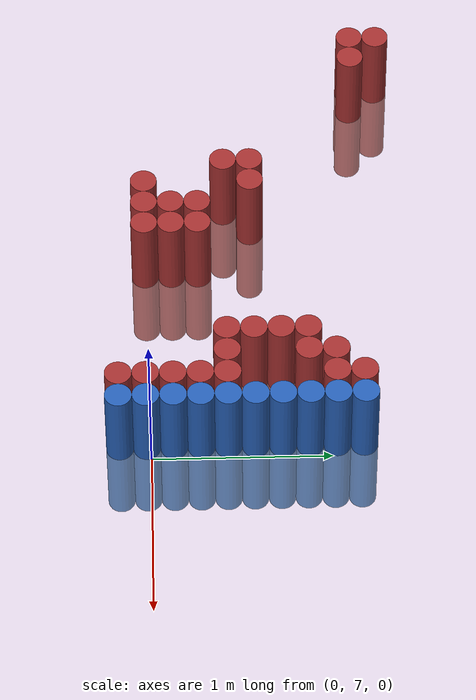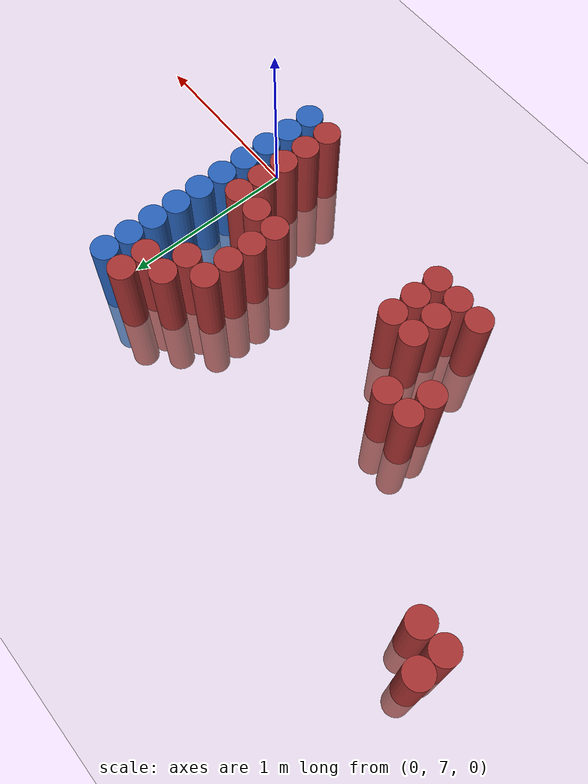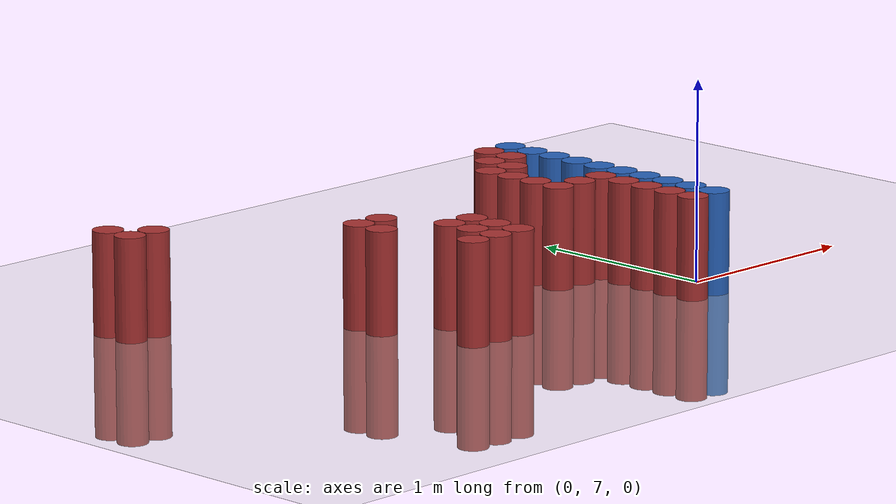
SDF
<sdf version="1.6">
 <world name="default">
  <model name="ground_plane">
   <static>1</static>
   <link name="link">
    <collision name="collision">
     <geometry><plane><normal>0 0 1</normal><size>100 100</size></plane></geometry>
     <surface><friction><ode><mu>100</mu><mu2>50</mu2></ode></friction></surface>
    </collision>
    <visual name="visual">
     <cast_shadows>0</cast_shadows>
     <geometry><plane><normal>0 0 1</normal><size>100 100</size></plane></geometry>
     <material>
      <script><uri>file://media/materials/scripts/gazebo.material</uri><name>Gazebo/Grey</name></script>
     </material>
    </visual>
   </link>
  </model>
  <model name="unit_cylinder_196">
   <static>1</static>
   <pose>-2.625000 8.175000 0.000000 0.000000 0.000000 0.000000</pose>
   <link name="link">
    <inertial>
     <mass>1</mass>
     <inertia><ixx>0.145833</ixx><ixy>0</ixy><ixz>0</ixz><iyy>0.145833</iyy><iyz>0</iyz><izz>0.125</izz></inertia>
    </inertial>
    <collision name="collision">
     <geometry><cylinder><radius>0.075000</radius><length>1</length></cylinder></geometry>
    </collision>
    <visual name="visual">
     <geometry><cylinder><radius>0.075000</radius><length>1</length></cylinder></geometry>
     <material>
      <ambient>0.648000 0.192000 0.192000 1</ambient>
      <diffuse>0.648000 0.192000 0.192000 1</diffuse>
     </material>
     <material>
      <script><name>Gazebo/Grey</name><uri>file://media/materials/scripts/gazebo.material</uri></script>
     </material>
    </visual>
    <sensor name="sensor_contact" type="contact"><contact><collision>collision</collision></contact></sensor>
   </link>
   <plugin filename="gz-sim-touchplugin-system" name="gz::sim::systems::TouchPlugin">
    <target>robot</target>
    <namespace>robot</namespace>
    <time>0.001</time>
    <enabled>true</enabled>
   </plugin>
  </model>
  <model name="unit_cylinder_197">
   <static>1</static>
   <pose>-2.625000 8.325000 0.000000 0.000000 0.000000 0.000000</pose>
   <link name="link">
    <inertial>
     <mass>1</mass>
     <inertia><ixx>0.145833</ixx><ixy>0</ixy><ixz>0</ixz><iyy>0.145833</iyy><iyz>0</iyz><izz>0.125</izz></inertia>
    </inertial>
    <collision name="collision">
     <geometry><cylinder><radius>0.075000</radius><length>1</length></cylinder></geometry>
    </collision>
    <visual name="visual">
     <geometry><cylinder><radius>0.075000</radius><length>1</length></cylinder></geometry>
     <material>
      <ambient>0.648000 0.192000 0.192000 1</ambient>
      <diffuse>0.648000 0.192000 0.192000 1</diffuse>
     </material>
     <material>
      <script><name>Gazebo/Grey</name><uri>file://media/materials/scripts/gazebo.material</uri></script>
     </material>
    </visual>
    <sensor name="sensor_contact" type="contact"><contact><collision>collision</collision></contact></sensor>
   </link>
   <plugin filename="gz-sim-touchplugin-system" name="gz::sim::systems::TouchPlugin">
    <target>robot</target>
    <namespace>robot</namespace>
    <time>0.001</time>
    <enabled>true</enabled>
   </plugin>
  </model>
  <model name="unit_cylinder_199">
   <static>1</static>
   <pose>-2.475000 8.175000 0.000000 0.000000 0.000000 0.000000</pose>
   <link name="link">
    <inertial>
     <mass>1</mass>
     <inertia><ixx>0.145833</ixx><ixy>0</ixy><ixz>0</ixz><iyy>0.145833</iyy><iyz>0</iyz><izz>0.125</izz></inertia>
    </inertial>
    <collision name="collision">
     <geometry><cylinder><radius>0.075000</radius><length>1</length></cylinder></geometry>
    </collision>
    <visual name="visual">
     <geometry><cylinder><radius>0.075000</radius><length>1</length></cylinder></geometry>
     <material>
      <ambient>0.648000 0.192000 0.192000 1</ambient>
      <diffuse>0.648000 0.192000 0.192000 1</diffuse>
     </material>
     <material>
      <script><name>Gazebo/Grey</name><uri>file://media/materials/scripts/gazebo.material</uri></script>
     </material>
    </visual>
    <sensor name="sensor_contact" type="contact"><contact><collision>collision</collision></contact></sensor>
   </link>
   <plugin filename="gz-sim-touchplugin-system" name="gz::sim::systems::TouchPlugin">
    <target>robot</target>
    <namespace>robot</namespace>
    <time>0.001</time>
    <enabled>true</enabled>
   </plugin>
  </model>
  <model name="unit_cylinder_215">
   <static>1</static>
   <pose>-1.725000 7.425000 0.000000 0.000000 0.000000 0.000000</pose>
   <link name="link">
    <inertial>
     <mass>1</mass>
     <inertia><ixx>0.145833</ixx><ixy>0</ixy><ixz>0</ixz><iyy>0.145833</iyy><iyz>0</iyz><izz>0.125</izz></inertia>
    </inertial>
    <collision name="collision">
     <geometry><cylinder><radius>0.075000</radius><length>1</length></cylinder></geometry>
    </collision>
    <visual name="visual">
     <geometry><cylinder><radius>0.075000</radius><length>1</length></cylinder></geometry>
     <material>
      <ambient>0.648000 0.192000 0.192000 1</ambient>
      <diffuse>0.648000 0.192000 0.192000 1</diffuse>
     </material>
     <material>
      <script><name>Gazebo/Grey</name><uri>file://media/materials/scripts/gazebo.material</uri></script>
     </material>
    </visual>
    <sensor name="sensor_contact" type="contact"><contact><collision>collision</collision></contact></sensor>
   </link>
   <plugin filename="gz-sim-touchplugin-system" name="gz::sim::systems::TouchPlugin">
    <target>robot</target>
    <namespace>robot</namespace>
    <time>0.001</time>
    <enabled>true</enabled>
   </plugin>
  </model>
  <model name="unit_cylinder_216">
   <static>1</static>
   <pose>-1.725000 7.575000 0.000000 0.000000 0.000000 0.000000</pose>
   <link name="link">
    <inertial>
     <mass>1</mass>
     <inertia><ixx>0.145833</ixx><ixy>0</ixy><ixz>0</ixz><iyy>0.145833</iyy><iyz>0</iyz><izz>0.125</izz></inertia>
    </inertial>
    <collision name="collision">
     <geometry><cylinder><radius>0.075000</radius><length>1</length></cylinder></geometry>
    </collision>
    <visual name="visual">
     <geometry><cylinder><radius>0.075000</radius><length>1</length></cylinder></geometry>
     <material>
      <ambient>0.648000 0.192000 0.192000 1</ambient>
      <diffuse>0.648000 0.192000 0.192000 1</diffuse>
     </material>
     <material>
      <script><name>Gazebo/Grey</name><uri>file://media/materials/scripts/gazebo.material</uri></script>
     </material>
    </visual>
    <sensor name="sensor_contact" type="contact"><contact><collision>collision</collision></contact></sensor>
   </link>
   <plugin filename="gz-sim-touchplugin-system" name="gz::sim::systems::TouchPlugin">
    <target>robot</target>
    <namespace>robot</namespace>
    <time>0.001</time>
    <enabled>true</enabled>
   </plugin>
  </model>
  <model name="unit_cylinder_223">
   <static>1</static>
   <pose>-1.575000 6.975000 0.000000 0.000000 0.000000 0.000000</pose>
   <link name="link">
    <inertial>
     <mass>1</mass>
     <inertia><ixx>0.145833</ixx><ixy>0</ixy><ixz>0</ixz><iyy>0.145833</iyy><iyz>0</iyz><izz>0.125</izz></inertia>
    </inertial>
    <collision name="collision">
     <geometry><cylinder><radius>0.075000</radius><length>1</length></cylinder></geometry>
    </collision>
    <visual name="visual">
     <geometry><cylinder><radius>0.075000</radius><length>1</length></cylinder></geometry>
     <material>
      <ambient>0.648000 0.192000 0.192000 1</ambient>
      <diffuse>0.648000 0.192000 0.192000 1</diffuse>
     </material>
     <material>
      <script><name>Gazebo/Grey</name><uri>file://media/materials/scripts/gazebo.material</uri></script>
     </material>
    </visual>
    <sensor name="sensor_contact" type="contact"><contact><collision>collision</collision></contact></sensor>
   </link>
   <plugin filename="gz-sim-touchplugin-system" name="gz::sim::systems::TouchPlugin">
    <target>robot</target>
    <namespace>robot</namespace>
    <time>0.001</time>
    <enabled>true</enabled>
   </plugin>
  </model>
  <model name="unit_cylinder_224">
   <static>1</static>
   <pose>-1.575000 7.575000 0.000000 0.000000 0.000000 0.000000</pose>
   <link name="link">
    <inertial>
     <mass>1</mass>
     <inertia><ixx>0.145833</ixx><ixy>0</ixy><ixz>0</ixz><iyy>0.145833</iyy><iyz>0</iyz><izz>0.125</izz></inertia>
    </inertial>
    <collision name="collision">
     <geometry><cylinder><radius>0.075000</radius><length>1</length></cylinder></geometry>
    </collision>
    <visual name="visual">
     <geometry><cylinder><radius>0.075000</radius><length>1</length></cylinder></geometry>
     <material>
      <ambient>0.648000 0.192000 0.192000 1</ambient>
      <diffuse>0.648000 0.192000 0.192000 1</diffuse>
     </material>
     <material>
      <script><name>Gazebo/Grey</name><uri>file://media/materials/scripts/gazebo.material</uri></script>
     </material>
    </visual>
    <sensor name="sensor_contact" type="contact"><contact><collision>collision</collision></contact></sensor>
   </link>
   <plugin filename="gz-sim-touchplugin-system" name="gz::sim::systems::TouchPlugin">
    <target>robot</target>
    <namespace>robot</namespace>
    <time>0.001</time>
    <enabled>true</enabled>
   </plugin>
  </model>
  <model name="unit_cylinder_231">
   <static>1</static>
   <pose>-1.425000 6.975000 0.000000 0.000000 0.000000 0.000000</pose>
   <link name="link">
    <inertial>
     <mass>1</mass>
     <inertia><ixx>0.145833</ixx><ixy>0</ixy><ixz>0</ixz><iyy>0.145833</iyy><iyz>0</iyz><izz>0.125</izz></inertia>
    </inertial>
    <collision name="collision">
     <geometry><cylinder><radius>0.075000</radius><length>1</length></cylinder></geometry>
    </collision>
    <visual name="visual">
     <geometry><cylinder><radius>0.075000</radius><length>1</length></cylinder></geometry>
     <material>
      <ambient>0.648000 0.192000 0.192000 1</ambient>
      <diffuse>0.648000 0.192000 0.192000 1</diffuse>
     </material>
     <material>
      <script><name>Gazebo/Grey</name><uri>file://media/materials/scripts/gazebo.material</uri></script>
     </material>
    </visual>
    <sensor name="sensor_contact" type="contact"><contact><collision>collision</collision></contact></sensor>
   </link>
   <plugin filename="gz-sim-touchplugin-system" name="gz::sim::systems::TouchPlugin">
    <target>robot</target>
    <namespace>robot</namespace>
    <time>0.001</time>
    <enabled>true</enabled>
   </plugin>
  </model>
  <model name="unit_cylinder_232">
   <static>1</static>
   <pose>-1.425000 7.125000 0.000000 0.000000 0.000000 0.000000</pose>
   <link name="link">
    <inertial>
     <mass>1</mass>
     <inertia><ixx>0.145833</ixx><ixy>0</ixy><ixz>0</ixz><iyy>0.145833</iyy><iyz>0</iyz><izz>0.125</izz></inertia>
    </inertial>
    <collision name="collision">
     <geometry><cylinder><radius>0.075000</radius><length>1</length></cylinder></geometry>
    </collision>
    <visual name="visual">
     <geometry><cylinder><radius>0.075000</radius><length>1</length></cylinder></geometry>
     <material>
      <ambient>0.648000 0.192000 0.192000 1</ambient>
      <diffuse>0.648000 0.192000 0.192000 1</diffuse>
     </material>
     <material>
      <script><name>Gazebo/Grey</name><uri>file://media/materials/scripts/gazebo.material</uri></script>
     </material>
    </visual>
    <sensor name="sensor_contact" type="contact"><contact><collision>collision</collision></contact></sensor>
   </link>
   <plugin filename="gz-sim-touchplugin-system" name="gz::sim::systems::TouchPlugin">
    <target>robot</target>
    <namespace>robot</namespace>
    <time>0.001</time>
    <enabled>true</enabled>
   </plugin>
  </model>
  <model name="unit_cylinder_233">
   <static>1</static>
   <pose>-1.425000 7.275000 0.000000 0.000000 0.000000 0.000000</pose>
   <link name="link">
    <inertial>
     <mass>1</mass>
     <inertia><ixx>0.145833</ixx><ixy>0</ixy><ixz>0</ixz><iyy>0.145833</iyy><iyz>0</iyz><izz>0.125</izz></inertia>
    </inertial>
    <collision name="collision">
     <geometry><cylinder><radius>0.075000</radius><length>1</length></cylinder></geometry>
    </collision>
    <visual name="visual">
     <geometry><cylinder><radius>0.075000</radius><length>1</length></cylinder></geometry>
     <material>
      <ambient>0.648000 0.192000 0.192000 1</ambient>
      <diffuse>0.648000 0.192000 0.192000 1</diffuse>
     </material>
     <material>
      <script><name>Gazebo/Grey</name><uri>file://media/materials/scripts/gazebo.material</uri></script>
     </material>
    </visual>
    <sensor name="sensor_contact" type="contact"><contact><collision>collision</collision></contact></sensor>
   </link>
   <plugin filename="gz-sim-touchplugin-system" name="gz::sim::systems::TouchPlugin">
    <target>robot</target>
    <namespace>robot</namespace>
    <time>0.001</time>
    <enabled>true</enabled>
   </plugin>
  </model>
  <model name="unit_cylinder_239">
   <static>1</static>
   <pose>-1.275000 6.975000 0.000000 0.000000 0.000000 0.000000</pose>
   <link name="link">
    <inertial>
     <mass>1</mass>
     <inertia><ixx>0.145833</ixx><ixy>0</ixy><ixz>0</ixz><iyy>0.145833</iyy><iyz>0</iyz><izz>0.125</izz></inertia>
    </inertial>
    <collision name="collision">
     <geometry><cylinder><radius>0.075000</radius><length>1</length></cylinder></geometry>
    </collision>
    <visual name="visual">
     <geometry><cylinder><radius>0.075000</radius><length>1</length></cylinder></geometry>
     <material>
      <ambient>0.648000 0.192000 0.192000 1</ambient>
      <diffuse>0.648000 0.192000 0.192000 1</diffuse>
     </material>
     <material>
      <script><name>Gazebo/Grey</name><uri>file://media/materials/scripts/gazebo.material</uri></script>
     </material>
    </visual>
    <sensor name="sensor_contact" type="contact"><contact><collision>collision</collision></contact></sensor>
   </link>
   <plugin filename="gz-sim-touchplugin-system" name="gz::sim::systems::TouchPlugin">
    <target>robot</target>
    <namespace>robot</namespace>
    <time>0.001</time>
    <enabled>true</enabled>
   </plugin>
  </model>
  <model name="unit_cylinder_240">
   <static>1</static>
   <pose>-1.275000 7.125000 0.000000 0.000000 0.000000 0.000000</pose>
   <link name="link">
    <inertial>
     <mass>1</mass>
     <inertia><ixx>0.145833</ixx><ixy>0</ixy><ixz>0</ixz><iyy>0.145833</iyy><iyz>0</iyz><izz>0.125</izz></inertia>
    </inertial>
    <collision name="collision">
     <geometry><cylinder><radius>0.075000</radius><length>1</length></cylinder></geometry>
    </collision>
    <visual name="visual">
     <geometry><cylinder><radius>0.075000</radius><length>1</length></cylinder></geometry>
     <material>
      <ambient>0.648000 0.192000 0.192000 1</ambient>
      <diffuse>0.648000 0.192000 0.192000 1</diffuse>
     </material>
     <material>
      <script><name>Gazebo/Grey</name><uri>file://media/materials/scripts/gazebo.material</uri></script>
     </material>
    </visual>
    <sensor name="sensor_contact" type="contact"><contact><collision>collision</collision></contact></sensor>
   </link>
   <plugin filename="gz-sim-touchplugin-system" name="gz::sim::systems::TouchPlugin">
    <target>robot</target>
    <namespace>robot</namespace>
    <time>0.001</time>
    <enabled>true</enabled>
   </plugin>
  </model>
  <model name="unit_cylinder_241">
   <static>1</static>
   <pose>-1.275000 7.275000 0.000000 0.000000 0.000000 0.000000</pose>
   <link name="link">
    <inertial>
     <mass>1</mass>
     <inertia><ixx>0.145833</ixx><ixy>0</ixy><ixz>0</ixz><iyy>0.145833</iyy><iyz>0</iyz><izz>0.125</izz></inertia>
    </inertial>
    <collision name="collision">
     <geometry><cylinder><radius>0.075000</radius><length>1</length></cylinder></geometry>
    </collision>
    <visual name="visual">
     <geometry><cylinder><radius>0.075000</radius><length>1</length></cylinder></geometry>
     <material>
      <ambient>0.648000 0.192000 0.192000 1</ambient>
      <diffuse>0.648000 0.192000 0.192000 1</diffuse>
     </material>
     <material>
      <script><name>Gazebo/Grey</name><uri>file://media/materials/scripts/gazebo.material</uri></script>
     </material>
    </visual>
    <sensor name="sensor_contact" type="contact"><contact><collision>collision</collision></contact></sensor>
   </link>
   <plugin filename="gz-sim-touchplugin-system" name="gz::sim::systems::TouchPlugin">
    <target>robot</target>
    <namespace>robot</namespace>
    <time>0.001</time>
    <enabled>true</enabled>
   </plugin>
  </model>
  <model name="unit_cylinder_272">
   <static>1</static>
   <pose>-0.525000 7.425000 0.000000 0.000000 0.000000 0.000000</pose>
   <link name="link">
    <inertial>
     <mass>1</mass>
     <inertia><ixx>0.145833</ixx><ixy>0</ixy><ixz>0</ixz><iyy>0.145833</iyy><iyz>0</iyz><izz>0.125</izz></inertia>
    </inertial>
    <collision name="collision">
     <geometry><cylinder><radius>0.075000</radius><length>1</length></cylinder></geometry>
    </collision>
    <visual name="visual">
     <geometry><cylinder><radius>0.075000</radius><length>1</length></cylinder></geometry>
     <material>
      <ambient>0.648000 0.192000 0.192000 1</ambient>
      <diffuse>0.648000 0.192000 0.192000 1</diffuse>
     </material>
     <material>
      <script><name>Gazebo/Grey</name><uri>file://media/materials/scripts/gazebo.material</uri></script>
     </material>
    </visual>
    <sensor name="sensor_contact" type="contact"><contact><collision>collision</collision></contact></sensor>
   </link>
   <plugin filename="gz-sim-touchplugin-system" name="gz::sim::systems::TouchPlugin">
    <target>robot</target>
    <namespace>robot</namespace>
    <time>0.001</time>
    <enabled>true</enabled>
   </plugin>
  </model>
  <model name="unit_cylinder_273">
   <static>1</static>
   <pose>-0.525000 7.575000 0.000000 0.000000 0.000000 0.000000</pose>
   <link name="link">
    <inertial>
     <mass>1</mass>
     <inertia><ixx>0.145833</ixx><ixy>0</ixy><ixz>0</ixz><iyy>0.145833</iyy><iyz>0</iyz><izz>0.125</izz></inertia>
    </inertial>
    <collision name="collision">
     <geometry><cylinder><radius>0.075000</radius><length>1</length></cylinder></geometry>
    </collision>
    <visual name="visual">
     <geometry><cylinder><radius>0.075000</radius><length>1</length></cylinder></geometry>
     <material>
      <ambient>0.648000 0.192000 0.192000 1</ambient>
      <diffuse>0.648000 0.192000 0.192000 1</diffuse>
     </material>
     <material>
      <script><name>Gazebo/Grey</name><uri>file://media/materials/scripts/gazebo.material</uri></script>
     </material>
    </visual>
    <sensor name="sensor_contact" type="contact"><contact><collision>collision</collision></contact></sensor>
   </link>
   <plugin filename="gz-sim-touchplugin-system" name="gz::sim::systems::TouchPlugin">
    <target>robot</target>
    <namespace>robot</namespace>
    <time>0.001</time>
    <enabled>true</enabled>
   </plugin>
  </model>
  <model name="unit_cylinder_274">
   <static>1</static>
   <pose>-0.525000 7.725000 0.000000 0.000000 0.000000 0.000000</pose>
   <link name="link">
    <inertial>
     <mass>1</mass>
     <inertia><ixx>0.145833</ixx><ixy>0</ixy><ixz>0</ixz><iyy>0.145833</iyy><iyz>0</iyz><izz>0.125</izz></inertia>
    </inertial>
    <collision name="collision">
     <geometry><cylinder><radius>0.075000</radius><length>1</length></cylinder></geometry>
    </collision>
    <visual name="visual">
     <geometry><cylinder><radius>0.075000</radius><length>1</length></cylinder></geometry>
     <material>
      <ambient>0.648000 0.192000 0.192000 1</ambient>
      <diffuse>0.648000 0.192000 0.192000 1</diffuse>
     </material>
     <material>
      <script><name>Gazebo/Grey</name><uri>file://media/materials/scripts/gazebo.material</uri></script>
     </material>
    </visual>
    <sensor name="sensor_contact" type="contact"><contact><collision>collision</collision></contact></sensor>
   </link>
   <plugin filename="gz-sim-touchplugin-system" name="gz::sim::systems::TouchPlugin">
    <target>robot</target>
    <namespace>robot</namespace>
    <time>0.001</time>
    <enabled>true</enabled>
   </plugin>
  </model>
  <model name="unit_cylinder_275">
   <static>1</static>
   <pose>-0.525000 7.875000 0.000000 0.000000 0.000000 0.000000</pose>
   <link name="link">
    <inertial>
     <mass>1</mass>
     <inertia><ixx>0.145833</ixx><ixy>0</ixy><ixz>0</ixz><iyy>0.145833</iyy><iyz>0</iyz><izz>0.125</izz></inertia>
    </inertial>
    <collision name="collision">
     <geometry><cylinder><radius>0.075000</radius><length>1</length></cylinder></geometry>
    </collision>
    <visual name="visual">
     <geometry><cylinder><radius>0.075000</radius><length>1</length></cylinder></geometry>
     <material>
      <ambient>0.648000 0.192000 0.192000 1</ambient>
      <diffuse>0.648000 0.192000 0.192000 1</diffuse>
     </material>
     <material>
      <script><name>Gazebo/Grey</name><uri>file://media/materials/scripts/gazebo.material</uri></script>
     </material>
    </visual>
    <sensor name="sensor_contact" type="contact"><contact><collision>collision</collision></contact></sensor>
   </link>
   <plugin filename="gz-sim-touchplugin-system" name="gz::sim::systems::TouchPlugin">
    <target>robot</target>
    <namespace>robot</namespace>
    <time>0.001</time>
    <enabled>true</enabled>
   </plugin>
  </model>
  <model name="unit_cylinder_279">
   <static>1</static>
   <pose>-0.375000 7.425000 0.000000 0.000000 0.000000 0.000000</pose>
   <link name="link">
    <inertial>
     <mass>1</mass>
     <inertia><ixx>0.145833</ixx><ixy>0</ixy><ixz>0</ixz><iyy>0.145833</iyy><iyz>0</iyz><izz>0.125</izz></inertia>
    </inertial>
    <collision name="collision">
     <geometry><cylinder><radius>0.075000</radius><length>1</length></cylinder></geometry>
    </collision>
    <visual name="visual">
     <geometry><cylinder><radius>0.075000</radius><length>1</length></cylinder></geometry>
     <material>
      <ambient>0.648000 0.192000 0.192000 1</ambient>
      <diffuse>0.648000 0.192000 0.192000 1</diffuse>
     </material>
     <material>
      <script><name>Gazebo/Grey</name><uri>file://media/materials/scripts/gazebo.material</uri></script>
     </material>
    </visual>
    <sensor name="sensor_contact" type="contact"><contact><collision>collision</collision></contact></sensor>
   </link>
   <plugin filename="gz-sim-touchplugin-system" name="gz::sim::systems::TouchPlugin">
    <target>robot</target>
    <namespace>robot</namespace>
    <time>0.001</time>
    <enabled>true</enabled>
   </plugin>
  </model>
  <model name="unit_cylinder_280">
   <static>1</static>
   <pose>-0.375000 7.875000 0.000000 0.000000 0.000000 0.000000</pose>
   <link name="link">
    <inertial>
     <mass>1</mass>
     <inertia><ixx>0.145833</ixx><ixy>0</ixy><ixz>0</ixz><iyy>0.145833</iyy><iyz>0</iyz><izz>0.125</izz></inertia>
    </inertial>
    <collision name="collision">
     <geometry><cylinder><radius>0.075000</radius><length>1</length></cylinder></geometry>
    </collision>
    <visual name="visual">
     <geometry><cylinder><radius>0.075000</radius><length>1</length></cylinder></geometry>
     <material>
      <ambient>0.648000 0.192000 0.192000 1</ambient>
      <diffuse>0.648000 0.192000 0.192000 1</diffuse>
     </material>
     <material>
      <script><name>Gazebo/Grey</name><uri>file://media/materials/scripts/gazebo.material</uri></script>
     </material>
    </visual>
    <sensor name="sensor_contact" type="contact"><contact><collision>collision</collision></contact></sensor>
   </link>
   <plugin filename="gz-sim-touchplugin-system" name="gz::sim::systems::TouchPlugin">
    <target>robot</target>
    <namespace>robot</namespace>
    <time>0.001</time>
    <enabled>true</enabled>
   </plugin>
  </model>
  <model name="unit_cylinder_281">
   <static>1</static>
   <pose>-0.375000 8.025000 0.000000 0.000000 0.000000 0.000000</pose>
   <link name="link">
    <inertial>
     <mass>1</mass>
     <inertia><ixx>0.145833</ixx><ixy>0</ixy><ixz>0</ixz><iyy>0.145833</iyy><iyz>0</iyz><izz>0.125</izz></inertia>
    </inertial>
    <collision name="collision">
     <geometry><cylinder><radius>0.075000</radius><length>1</length></cylinder></geometry>
    </collision>
    <visual name="visual">
     <geometry><cylinder><radius>0.075000</radius><length>1</length></cylinder></geometry>
     <material>
      <ambient>0.648000 0.192000 0.192000 1</ambient>
      <diffuse>0.648000 0.192000 0.192000 1</diffuse>
     </material>
     <material>
      <script><name>Gazebo/Grey</name><uri>file://media/materials/scripts/gazebo.material</uri></script>
     </material>
    </visual>
    <sensor name="sensor_contact" type="contact"><contact><collision>collision</collision></contact></sensor>
   </link>
   <plugin filename="gz-sim-touchplugin-system" name="gz::sim::systems::TouchPlugin">
    <target>robot</target>
    <namespace>robot</namespace>
    <time>0.001</time>
    <enabled>true</enabled>
   </plugin>
  </model>
  <model name="unit_cylinder_293">
   <static>1</static>
   <pose>-0.225000 6.825000 0.000000 0.000000 0.000000 0.000000</pose>
   <link name="link">
    <inertial>
     <mass>1</mass>
     <inertia><ixx>0.145833</ixx><ixy>0</ixy><ixz>0</ixz><iyy>0.145833</iyy><iyz>0</iyz><izz>0.125</izz></inertia>
    </inertial>
    <collision name="collision">
     <geometry><cylinder><radius>0.075000</radius><length>1</length></cylinder></geometry>
    </collision>
    <visual name="visual">
     <geometry><cylinder><radius>0.075000</radius><length>1</length></cylinder></geometry>
     <material>
      <ambient>0.648000 0.192000 0.192000 1</ambient>
      <diffuse>0.648000 0.192000 0.192000 1</diffuse>
     </material>
     <material>
      <script><name>Gazebo/Grey</name><uri>file://media/materials/scripts/gazebo.material</uri></script>
     </material>
    </visual>
    <sensor name="sensor_contact" type="contact"><contact><collision>collision</collision></contact></sensor>
   </link>
   <plugin filename="gz-sim-touchplugin-system" name="gz::sim::systems::TouchPlugin">
    <target>robot</target>
    <namespace>robot</namespace>
    <time>0.001</time>
    <enabled>true</enabled>
   </plugin>
  </model>
  <model name="unit_cylinder_294">
   <static>1</static>
   <pose>-0.225000 6.975000 0.000000 0.000000 0.000000 0.000000</pose>
   <link name="link">
    <inertial>
     <mass>1</mass>
     <inertia><ixx>0.145833</ixx><ixy>0</ixy><ixz>0</ixz><iyy>0.145833</iyy><iyz>0</iyz><izz>0.125</izz></inertia>
    </inertial>
    <collision name="collision">
     <geometry><cylinder><radius>0.075000</radius><length>1</length></cylinder></geometry>
    </collision>
    <visual name="visual">
     <geometry><cylinder><radius>0.075000</radius><length>1</length></cylinder></geometry>
     <material>
      <ambient>0.648000 0.192000 0.192000 1</ambient>
      <diffuse>0.648000 0.192000 0.192000 1</diffuse>
     </material>
     <material>
      <script><name>Gazebo/Grey</name><uri>file://media/materials/scripts/gazebo.material</uri></script>
     </material>
    </visual>
    <sensor name="sensor_contact" type="contact"><contact><collision>collision</collision></contact></sensor>
   </link>
   <plugin filename="gz-sim-touchplugin-system" name="gz::sim::systems::TouchPlugin">
    <target>robot</target>
    <namespace>robot</namespace>
    <time>0.001</time>
    <enabled>true</enabled>
   </plugin>
  </model>
  <model name="unit_cylinder_295">
   <static>1</static>
   <pose>-0.225000 7.125000 0.000000 0.000000 0.000000 0.000000</pose>
   <link name="link">
    <inertial>
     <mass>1</mass>
     <inertia><ixx>0.145833</ixx><ixy>0</ixy><ixz>0</ixz><iyy>0.145833</iyy><iyz>0</iyz><izz>0.125</izz></inertia>
    </inertial>
    <collision name="collision">
     <geometry><cylinder><radius>0.075000</radius><length>1</length></cylinder></geometry>
    </collision>
    <visual name="visual">
     <geometry><cylinder><radius>0.075000</radius><length>1</length></cylinder></geometry>
     <material>
      <ambient>0.648000 0.192000 0.192000 1</ambient>
      <diffuse>0.648000 0.192000 0.192000 1</diffuse>
     </material>
     <material>
      <script><name>Gazebo/Grey</name><uri>file://media/materials/scripts/gazebo.material</uri></script>
     </material>
    </visual>
    <sensor name="sensor_contact" type="contact"><contact><collision>collision</collision></contact></sensor>
   </link>
   <plugin filename="gz-sim-touchplugin-system" name="gz::sim::systems::TouchPlugin">
    <target>robot</target>
    <namespace>robot</namespace>
    <time>0.001</time>
    <enabled>true</enabled>
   </plugin>
  </model>
  <model name="unit_cylinder_296">
   <static>1</static>
   <pose>-0.225000 7.275000 0.000000 0.000000 0.000000 0.000000</pose>
   <link name="link">
    <inertial>
     <mass>1</mass>
     <inertia><ixx>0.145833</ixx><ixy>0</ixy><ixz>0</ixz><iyy>0.145833</iyy><iyz>0</iyz><izz>0.125</izz></inertia>
    </inertial>
    <collision name="collision">
     <geometry><cylinder><radius>0.075000</radius><length>1</length></cylinder></geometry>
    </collision>
    <visual name="visual">
     <geometry><cylinder><radius>0.075000</radius><length>1</length></cylinder></geometry>
     <material>
      <ambient>0.648000 0.192000 0.192000 1</ambient>
      <diffuse>0.648000 0.192000 0.192000 1</diffuse>
     </material>
     <material>
      <script><name>Gazebo/Grey</name><uri>file://media/materials/scripts/gazebo.material</uri></script>
     </material>
    </visual>
    <sensor name="sensor_contact" type="contact"><contact><collision>collision</collision></contact></sensor>
   </link>
   <plugin filename="gz-sim-touchplugin-system" name="gz::sim::systems::TouchPlugin">
    <target>robot</target>
    <namespace>robot</namespace>
    <time>0.001</time>
    <enabled>true</enabled>
   </plugin>
  </model>
  <model name="unit_cylinder_297">
   <static>1</static>
   <pose>-0.225000 7.425000 0.000000 0.000000 0.000000 0.000000</pose>
   <link name="link">
    <inertial>
     <mass>1</mass>
     <inertia><ixx>0.145833</ixx><ixy>0</ixy><ixz>0</ixz><iyy>0.145833</iyy><iyz>0</iyz><izz>0.125</izz></inertia>
    </inertial>
    <collision name="collision">
     <geometry><cylinder><radius>0.075000</radius><length>1</length></cylinder></geometry>
    </collision>
    <visual name="visual">
     <geometry><cylinder><radius>0.075000</radius><length>1</length></cylinder></geometry>
     <material>
      <ambient>0.648000 0.192000 0.192000 1</ambient>
      <diffuse>0.648000 0.192000 0.192000 1</diffuse>
     </material>
     <material>
      <script><name>Gazebo/Grey</name><uri>file://media/materials/scripts/gazebo.material</uri></script>
     </material>
    </visual>
    <sensor name="sensor_contact" type="contact"><contact><collision>collision</collision></contact></sensor>
   </link>
   <plugin filename="gz-sim-touchplugin-system" name="gz::sim::systems::TouchPlugin">
    <target>robot</target>
    <namespace>robot</namespace>
    <time>0.001</time>
    <enabled>true</enabled>
   </plugin>
  </model>
  <model name="unit_cylinder_298">
   <static>1</static>
   <pose>-0.225000 8.025000 0.000000 0.000000 0.000000 0.000000</pose>
   <link name="link">
    <inertial>
     <mass>1</mass>
     <inertia><ixx>0.145833</ixx><ixy>0</ixy><ixz>0</ixz><iyy>0.145833</iyy><iyz>0</iyz><izz>0.125</izz></inertia>
    </inertial>
    <collision name="collision">
     <geometry><cylinder><radius>0.075000</radius><length>1</length></cylinder></geometry>
    </collision>
    <visual name="visual">
     <geometry><cylinder><radius>0.075000</radius><length>1</length></cylinder></geometry>
     <material>
      <ambient>0.648000 0.192000 0.192000 1</ambient>
      <diffuse>0.648000 0.192000 0.192000 1</diffuse>
     </material>
     <material>
      <script><name>Gazebo/Grey</name><uri>file://media/materials/scripts/gazebo.material</uri></script>
     </material>
    </visual>
    <sensor name="sensor_contact" type="contact"><contact><collision>collision</collision></contact></sensor>
   </link>
   <plugin filename="gz-sim-touchplugin-system" name="gz::sim::systems::TouchPlugin">
    <target>robot</target>
    <namespace>robot</namespace>
    <time>0.001</time>
    <enabled>true</enabled>
   </plugin>
  </model>
  <model name="unit_cylinder_299">
   <static>1</static>
   <pose>-0.225000 8.175000 0.000000 0.000000 0.000000 0.000000</pose>
   <link name="link">
    <inertial>
     <mass>1</mass>
     <inertia><ixx>0.145833</ixx><ixy>0</ixy><ixz>0</ixz><iyy>0.145833</iyy><iyz>0</iyz><izz>0.125</izz></inertia>
    </inertial>
    <collision name="collision">
     <geometry><cylinder><radius>0.075000</radius><length>1</length></cylinder></geometry>
    </collision>
    <visual name="visual">
     <geometry><cylinder><radius>0.075000</radius><length>1</length></cylinder></geometry>
     <material>
      <ambient>0.648000 0.192000 0.192000 1</ambient>
      <diffuse>0.648000 0.192000 0.192000 1</diffuse>
     </material>
     <material>
      <script><name>Gazebo/Grey</name><uri>file://media/materials/scripts/gazebo.material</uri></script>
     </material>
    </visual>
    <sensor name="sensor_contact" type="contact"><contact><collision>collision</collision></contact></sensor>
   </link>
   <plugin filename="gz-sim-touchplugin-system" name="gz::sim::systems::TouchPlugin">
    <target>robot</target>
    <namespace>robot</namespace>
    <time>0.001</time>
    <enabled>true</enabled>
   </plugin>
  </model>
  <model name="unit_cylinder_316">
   <static>1</static>
   <pose>-0.075000 6.825000 0.000000 0.000000 0.000000 0.000000</pose>
   <link name="link">
    <inertial>
     <mass>1</mass>
     <inertia><ixx>0.145833</ixx><ixy>0</ixy><ixz>0</ixz><iyy>0.145833</iyy><iyz>0</iyz><izz>0.125</izz></inertia>
    </inertial>
    <collision name="collision">
     <geometry><cylinder><radius>0.075000</radius><length>1</length></cylinder></geometry>
    </collision>
    <visual name="visual">
     <geometry><cylinder><radius>0.075000</radius><length>1</length></cylinder></geometry>
     <material>
      <ambient>0.152000 0.379000 0.720000 1</ambient>
      <diffuse>0.152000 0.379000 0.720000 1</diffuse>
     </material>
     <material>
      <script><name>Gazebo/Grey</name><uri>file://media/materials/scripts/gazebo.material</uri></script>
     </material>
    </visual>
    <sensor name="sensor_contact" type="contact"><contact><collision>collision</collision></contact></sensor>
   </link>
   <plugin filename="gz-sim-touchplugin-system" name="gz::sim::systems::TouchPlugin">
    <target>robot</target>
    <namespace>robot</namespace>
    <time>0.001</time>
    <enabled>true</enabled>
   </plugin>
  </model>
  <model name="unit_cylinder_317">
   <static>1</static>
   <pose>-0.075000 6.975000 0.000000 0.000000 0.000000 0.000000</pose>
   <link name="link">
    <inertial>
     <mass>1</mass>
     <inertia><ixx>0.145833</ixx><ixy>0</ixy><ixz>0</ixz><iyy>0.145833</iyy><iyz>0</iyz><izz>0.125</izz></inertia>
    </inertial>
    <collision name="collision">
     <geometry><cylinder><radius>0.075000</radius><length>1</length></cylinder></geometry>
    </collision>
    <visual name="visual">
     <geometry><cylinder><radius>0.075000</radius><length>1</length></cylinder></geometry>
     <material>
      <ambient>0.152000 0.379000 0.720000 1</ambient>
      <diffuse>0.152000 0.379000 0.720000 1</diffuse>
     </material>
     <material>
      <script><name>Gazebo/Grey</name><uri>file://media/materials/scripts/gazebo.material</uri></script>
     </material>
    </visual>
    <sensor name="sensor_contact" type="contact"><contact><collision>collision</collision></contact></sensor>
   </link>
   <plugin filename="gz-sim-touchplugin-system" name="gz::sim::systems::TouchPlugin">
    <target>robot</target>
    <namespace>robot</namespace>
    <time>0.001</time>
    <enabled>true</enabled>
   </plugin>
  </model>
  <model name="unit_cylinder_318">
   <static>1</static>
   <pose>-0.075000 7.125000 0.000000 0.000000 0.000000 0.000000</pose>
   <link name="link">
    <inertial>
     <mass>1</mass>
     <inertia><ixx>0.145833</ixx><ixy>0</ixy><ixz>0</ixz><iyy>0.145833</iyy><iyz>0</iyz><izz>0.125</izz></inertia>
    </inertial>
    <collision name="collision">
     <geometry><cylinder><radius>0.075000</radius><length>1</length></cylinder></geometry>
    </collision>
    <visual name="visual">
     <geometry><cylinder><radius>0.075000</radius><length>1</length></cylinder></geometry>
     <material>
      <ambient>0.152000 0.379000 0.720000 1</ambient>
      <diffuse>0.152000 0.379000 0.720000 1</diffuse>
     </material>
     <material>
      <script><name>Gazebo/Grey</name><uri>file://media/materials/scripts/gazebo.material</uri></script>
     </material>
    </visual>
    <sensor name="sensor_contact" type="contact"><contact><collision>collision</collision></contact></sensor>
   </link>
   <plugin filename="gz-sim-touchplugin-system" name="gz::sim::systems::TouchPlugin">
    <target>robot</target>
    <namespace>robot</namespace>
    <time>0.001</time>
    <enabled>true</enabled>
   </plugin>
  </model>
  <model name="unit_cylinder_319">
   <static>1</static>
   <pose>-0.075000 7.275000 0.000000 0.000000 0.000000 0.000000</pose>
   <link name="link">
    <inertial>
     <mass>1</mass>
     <inertia><ixx>0.145833</ixx><ixy>0</ixy><ixz>0</ixz><iyy>0.145833</iyy><iyz>0</iyz><izz>0.125</izz></inertia>
    </inertial>
    <collision name="collision">
     <geometry><cylinder><radius>0.075000</radius><length>1</length></cylinder></geometry>
    </collision>
    <visual name="visual">
     <geometry><cylinder><radius>0.075000</radius><length>1</length></cylinder></geometry>
     <material>
      <ambient>0.152000 0.379000 0.720000 1</ambient>
      <diffuse>0.152000 0.379000 0.720000 1</diffuse>
     </material>
     <material>
      <script><name>Gazebo/Grey</name><uri>file://media/materials/scripts/gazebo.material</uri></script>
     </material>
    </visual>
    <sensor name="sensor_contact" type="contact"><contact><collision>collision</collision></contact></sensor>
   </link>
   <plugin filename="gz-sim-touchplugin-system" name="gz::sim::systems::TouchPlugin">
    <target>robot</target>
    <namespace>robot</namespace>
    <time>0.001</time>
    <enabled>true</enabled>
   </plugin>
  </model>
  <model name="unit_cylinder_320">
   <static>1</static>
   <pose>-0.075000 7.425000 0.000000 0.000000 0.000000 0.000000</pose>
   <link name="link">
    <inertial>
     <mass>1</mass>
     <inertia><ixx>0.145833</ixx><ixy>0</ixy><ixz>0</ixz><iyy>0.145833</iyy><iyz>0</iyz><izz>0.125</izz></inertia>
    </inertial>
    <collision name="collision">
     <geometry><cylinder><radius>0.075000</radius><length>1</length></cylinder></geometry>
    </collision>
    <visual name="visual">
     <geometry><cylinder><radius>0.075000</radius><length>1</length></cylinder></geometry>
     <material>
      <ambient>0.152000 0.379000 0.720000 1</ambient>
      <diffuse>0.152000 0.379000 0.720000 1</diffuse>
     </material>
     <material>
      <script><name>Gazebo/Grey</name><uri>file://media/materials/scripts/gazebo.material</uri></script>
     </material>
    </visual>
    <sensor name="sensor_contact" type="contact"><contact><collision>collision</collision></contact></sensor>
   </link>
   <plugin filename="gz-sim-touchplugin-system" name="gz::sim::systems::TouchPlugin">
    <target>robot</target>
    <namespace>robot</namespace>
    <time>0.001</time>
    <enabled>true</enabled>
   </plugin>
  </model>
  <model name="unit_cylinder_321">
   <static>1</static>
   <pose>-0.075000 7.575000 0.000000 0.000000 0.000000 0.000000</pose>
   <link name="link">
    <inertial>
     <mass>1</mass>
     <inertia><ixx>0.145833</ixx><ixy>0</ixy><ixz>0</ixz><iyy>0.145833</iyy><iyz>0</iyz><izz>0.125</izz></inertia>
    </inertial>
    <collision name="collision">
     <geometry><cylinder><radius>0.075000</radius><length>1</length></cylinder></geometry>
    </collision>
    <visual name="visual">
     <geometry><cylinder><radius>0.075000</radius><length>1</length></cylinder></geometry>
     <material>
      <ambient>0.152000 0.379000 0.720000 1</ambient>
      <diffuse>0.152000 0.379000 0.720000 1</diffuse>
     </material>
     <material>
      <script><name>Gazebo/Grey</name><uri>file://media/materials/scripts/gazebo.material</uri></script>
     </material>
    </visual>
    <sensor name="sensor_contact" type="contact"><contact><collision>collision</collision></contact></sensor>
   </link>
   <plugin filename="gz-sim-touchplugin-system" name="gz::sim::systems::TouchPlugin">
    <target>robot</target>
    <namespace>robot</namespace>
    <time>0.001</time>
    <enabled>true</enabled>
   </plugin>
  </model>
  <model name="unit_cylinder_322">
   <static>1</static>
   <pose>-0.075000 7.725000 0.000000 0.000000 0.000000 0.000000</pose>
   <link name="link">
    <inertial>
     <mass>1</mass>
     <inertia><ixx>0.145833</ixx><ixy>0</ixy><ixz>0</ixz><iyy>0.145833</iyy><iyz>0</iyz><izz>0.125</izz></inertia>
    </inertial>
    <collision name="collision">
     <geometry><cylinder><radius>0.075000</radius><length>1</length></cylinder></geometry>
    </collision>
    <visual name="visual">
     <geometry><cylinder><radius>0.075000</radius><length>1</length></cylinder></geometry>
     <material>
      <ambient>0.152000 0.379000 0.720000 1</ambient>
      <diffuse>0.152000 0.379000 0.720000 1</diffuse>
     </material>
     <material>
      <script><name>Gazebo/Grey</name><uri>file://media/materials/scripts/gazebo.material</uri></script>
     </material>
    </visual>
    <sensor name="sensor_contact" type="contact"><contact><collision>collision</collision></contact></sensor>
   </link>
   <plugin filename="gz-sim-touchplugin-system" name="gz::sim::systems::TouchPlugin">
    <target>robot</target>
    <namespace>robot</namespace>
    <time>0.001</time>
    <enabled>true</enabled>
   </plugin>
  </model>
  <model name="unit_cylinder_323">
   <static>1</static>
   <pose>-0.075000 7.875000 0.000000 0.000000 0.000000 0.000000</pose>
   <link name="link">
    <inertial>
     <mass>1</mass>
     <inertia><ixx>0.145833</ixx><ixy>0</ixy><ixz>0</ixz><iyy>0.145833</iyy><iyz>0</iyz><izz>0.125</izz></inertia>
    </inertial>
    <collision name="collision">
     <geometry><cylinder><radius>0.075000</radius><length>1</length></cylinder></geometry>
    </collision>
    <visual name="visual">
     <geometry><cylinder><radius>0.075000</radius><length>1</length></cylinder></geometry>
     <material>
      <ambient>0.152000 0.379000 0.720000 1</ambient>
      <diffuse>0.152000 0.379000 0.720000 1</diffuse>
     </material>
     <material>
      <script><name>Gazebo/Grey</name><uri>file://media/materials/scripts/gazebo.material</uri></script>
     </material>
    </visual>
    <sensor name="sensor_contact" type="contact"><contact><collision>collision</collision></contact></sensor>
   </link>
   <plugin filename="gz-sim-touchplugin-system" name="gz::sim::systems::TouchPlugin">
    <target>robot</target>
    <namespace>robot</namespace>
    <time>0.001</time>
    <enabled>true</enabled>
   </plugin>
  </model>
  <model name="unit_cylinder_324">
   <static>1</static>
   <pose>-0.075000 8.025000 0.000000 0.000000 0.000000 0.000000</pose>
   <link name="link">
    <inertial>
     <mass>1</mass>
     <inertia><ixx>0.145833</ixx><ixy>0</ixy><ixz>0</ixz><iyy>0.145833</iyy><iyz>0</iyz><izz>0.125</izz></inertia>
    </inertial>
    <collision name="collision">
     <geometry><cylinder><radius>0.075000</radius><length>1</length></cylinder></geometry>
    </collision>
    <visual name="visual">
     <geometry><cylinder><radius>0.075000</radius><length>1</length></cylinder></geometry>
     <material>
      <ambient>0.152000 0.379000 0.720000 1</ambient>
      <diffuse>0.152000 0.379000 0.720000 1</diffuse>
     </material>
     <material>
      <script><name>Gazebo/Grey</name><uri>file://media/materials/scripts/gazebo.material</uri></script>
     </material>
    </visual>
    <sensor name="sensor_contact" type="contact"><contact><collision>collision</collision></contact></sensor>
   </link>
   <plugin filename="gz-sim-touchplugin-system" name="gz::sim::systems::TouchPlugin">
    <target>robot</target>
    <namespace>robot</namespace>
    <time>0.001</time>
    <enabled>true</enabled>
   </plugin>
  </model>
  <model name="unit_cylinder_325">
   <static>1</static>
   <pose>-0.075000 8.175000 0.000000 0.000000 0.000000 0.000000</pose>
   <link name="link">
    <inertial>
     <mass>1</mass>
     <inertia><ixx>0.145833</ixx><ixy>0</ixy><ixz>0</ixz><iyy>0.145833</iyy><iyz>0</iyz><izz>0.125</izz></inertia>
    </inertial>
    <collision name="collision">
     <geometry><cylinder><radius>0.075000</radius><length>1</length></cylinder></geometry>
    </collision>
    <visual name="visual">
     <geometry><cylinder><radius>0.075000</radius><length>1</length></cylinder></geometry>
     <material>
      <ambient>0.152000 0.379000 0.720000 1</ambient>
      <diffuse>0.152000 0.379000 0.720000 1</diffuse>
     </material>
     <material>
      <script><name>Gazebo/Grey</name><uri>file://media/materials/scripts/gazebo.material</uri></script>
     </material>
    </visual>
    <sensor name="sensor_contact" type="contact"><contact><collision>collision</collision></contact></sensor>
   </link>
   <plugin filename="gz-sim-touchplugin-system" name="gz::sim::systems::TouchPlugin">
    <target>robot</target>
    <namespace>robot</namespace>
    <time>0.001</time>
    <enabled>true</enabled>
   </plugin>
  </model>
 </world>
</sdf>
